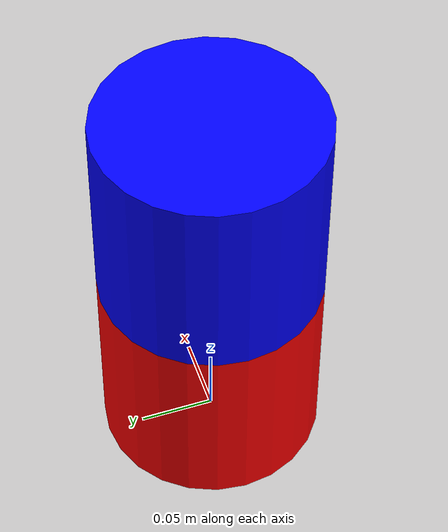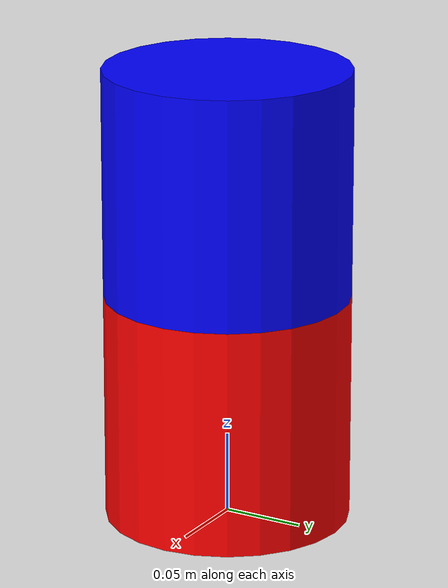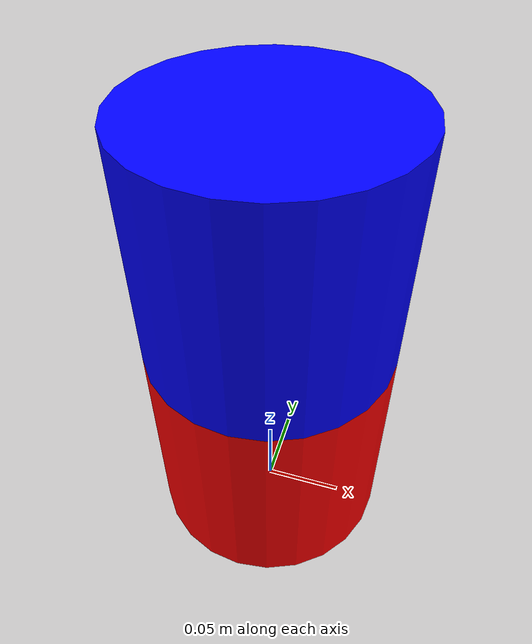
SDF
<?xml version='1.0'?>
<sdf version='1.4'>
  <model name="beacon_RB">
	<static>true</static>
          <link name='chassis_lower'>
            <pose>0 0 0.07 0 0 0</pose>

            <collision name='collision'>
              <geometry>
                <cylinder>
                  <radius>.075</radius>
		  <length>.140</length>
                </cylinder>
              </geometry>
            </collision>

            <visual name='visual'>
              <geometry>
                <cylinder>
                  <radius>.075</radius>
		  <length>.140</length>
                </cylinder>
              </geometry>
        	<material>
          	  <ambient>1 0 0 1</ambient>
          	  <diffuse>1 0 0 1</diffuse>
          	  <specular>0.1 0.1 0.1 1</specular>
         	  <emissive>0 0 0 0</emissive>
        	</material>
            </visual>
          </link>

          <link name='chassis_upper'>
            <pose>0 0 0.21 0 0 0</pose>

            <collision name='collision'>
              <geometry>
                <cylinder>
                  <radius>.075</radius>
		  <length>.140</length>
                </cylinder>
              </geometry>
            </collision>

            <visual name='visual'>
              <geometry>
                <cylinder>
                  <radius>.075</radius>
		  <length>.140</length>
                </cylinder>
              </geometry>
        	<material>
          	  <ambient>0 0 1 1</ambient>
          	  <diffuse>0 0 1 1</diffuse>
          	  <specular>0.1 0.1 0.1 1</specular>
         	  <emissive>0 0 0 0</emissive>
        	</material>
            </visual>
          </link>

  </model>
</sdf>
